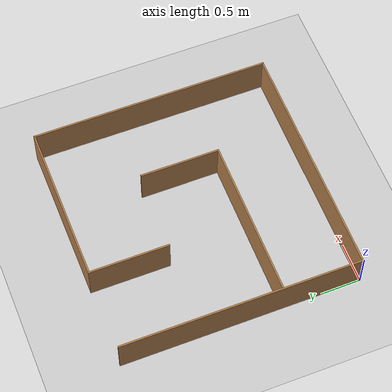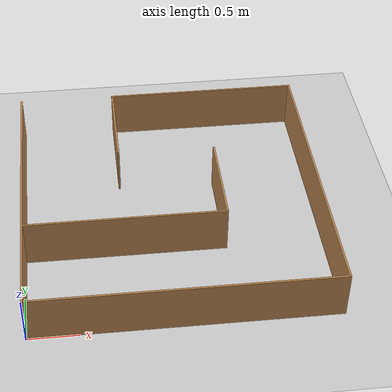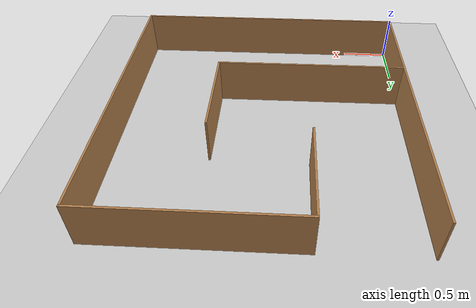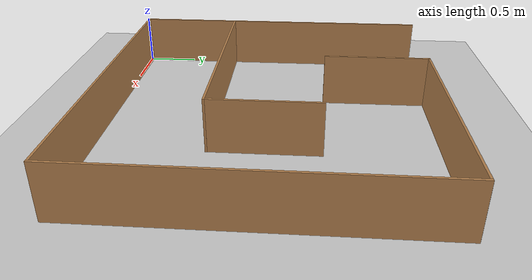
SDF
<sdf version="1.6">
 <world name="default">
  <light name="sun" type="directional">
   <pose>0 0 10 0 -0 0</pose>
   <diffuse>0.8 0.8 0.8 1</diffuse>
   <specular>0.2 0.2 0.2 1</specular>
   <attenuation>
    <range>1000</range>
    <constant>0.9</constant>
    <linear>0.01</linear>
    <quadratic>0.001</quadratic>
   </attenuation>
   <direction>-0.5 0.1 -0.9</direction>
  </light>
  <model name="ground_plane">
   <static>1</static>
   <link name="link">
    <collision name="collision">
     <geometry><plane><normal>0 0 1</normal><size>100 100</size></plane></geometry>
     <surface>
      <contact><collide_bitmask>65535</collide_bitmask></contact>
      <friction><ode><mu>100</mu><mu2>50</mu2></ode></friction>
     </surface>
    </collision>
    <visual name="visual">
     <cast_shadows>0</cast_shadows>
     <geometry><plane><normal>0 0 1</normal><size>100 100</size></plane></geometry>
     <material>
      <script><uri>file://media/materials/scripts/gazebo.material</uri><name>Gazebo/Grey</name></script>
     </material>
    </visual>
   </link>
  </model>
  <gravity>0 0 -9.8</gravity>
  <magnetic_field>6e-06 2.3e-05 -4.2e-05</magnetic_field>
  <atmosphere type="adiabatic"/>
  <physics name="default_physics" default="0" type="ode">
   <max_step_size>0.001</max_step_size>
   <real_time_factor>1</real_time_factor>
   <real_time_update_rate>1000</real_time_update_rate>
  </physics>
  <scene><ambient>0.4 0.4 0.4 1</ambient><background>0.7 0.7 0.7 1</background><shadows>1</shadows></scene>
  <audio><device>default</device></audio>
  <spherical_coordinates>
   <surface_model>EARTH_WGS84</surface_model>
   <latitude_deg>0</latitude_deg>
   <longitude_deg>0</longitude_deg>
   <elevation>0</elevation>
   <heading_deg>0</heading_deg>
  </spherical_coordinates>
  <model name="circuit_25.1">
   <pose>1.49593 1.50415 0 0 -0 0</pose>
   <link name="Wall_12">
    <collision name="Wall_12_Collision">
     <geometry><box><size>3 0.02 0.5</size></box></geometry>
     <pose>0 0 0.25 0 -0 0</pose>
    </collision>
    <visual name="Wall_12_Visual">
     <pose>0 0 0.25 0 -0 0</pose>
     <geometry><box><size>3 0.02 0.5</size></box></geometry>
     <material>
      <script><uri>file://media/materials/scripts/gazebo.material</uri><name>Gazebo/Wood</name></script>
      <ambient>1 1 1 1</ambient>
     </material>
     <meta><layer>0</layer></meta>
    </visual>
    <pose>0 -1.49069 0 0 -0 0</pose>
   </link>
   <link name="Wall_14">
    <collision name="Wall_14_Collision">
     <geometry><box><size>3 0.02 0.5</size></box></geometry>
     <pose>0 0 0.25 0 -0 0</pose>
    </collision>
    <visual name="Wall_14_Visual">
     <pose>0 0 0.25 0 -0 0</pose>
     <geometry><box><size>3 0.02 0.5</size></box></geometry>
     <material>
      <script><uri>file://media/materials/scripts/gazebo.material</uri><name>Gazebo/Wood</name></script>
      <ambient>1 1 1 1</ambient>
     </material>
     <meta><layer>0</layer></meta>
    </visual>
    <pose>-1.4903 -0.000677 0 0 -0 1.5708</pose>
   </link>
   <link name="Wall_16">
    <collision name="Wall_16_Collision">
     <geometry><box><size>3 0.02 0.5</size></box></geometry>
     <pose>0 0 0.25 0 -0 0</pose>
    </collision>
    <visual name="Wall_16_Visual">
     <pose>0 0 0.25 0 -0 0</pose>
     <geometry><box><size>3 0.02 0.5</size></box></geometry>
     <material>
      <script><uri>file://media/materials/scripts/gazebo.material</uri><name>Gazebo/Wood</name></script>
      <ambient>1 1 1 1</ambient>
     </material>
     <meta><layer>0</layer></meta>
    </visual>
    <pose>1.4903 -0.000565 0 0 -0 1.5708</pose>
   </link>
   <link name="Wall_18">
    <collision name="Wall_18_Collision">
     <geometry><box><size>2 0.02 0.5</size></box></geometry>
     <pose>0 0 0.25 0 -0 0</pose>
    </collision>
    <visual name="Wall_18_Visual">
     <pose>0 0 0.25 0 -0 0</pose>
     <geometry><box><size>2 0.02 0.5</size></box></geometry>
     <material>
      <script><uri>file://media/materials/scripts/gazebo.material</uri><name>Gazebo/Wood</name></script>
      <ambient>1 1 1 1</ambient>
     </material>
     <meta><layer>0</layer></meta>
    </visual>
    <pose>0.500076 1.49069 0 0 -0 3.14159</pose>
   </link>
   <link name="Wall_20">
    <collision name="Wall_20_Collision">
     <geometry><box><size>2 0.02 0.5</size></box></geometry>
     <pose>0 0 0.25 0 -0 0</pose>
    </collision>
    <visual name="Wall_20_Visual">
     <pose>0 0 0.25 0 -0 0</pose>
     <geometry><box><size>2 0.02 0.5</size></box></geometry>
     <material>
      <script><uri>file://media/materials/scripts/gazebo.material</uri><name>Gazebo/Wood</name></script>
      <ambient>1 1 1 1</ambient>
     </material>
     <meta><layer>0</layer></meta>
    </visual>
    <pose>-0.483514 -0.500636 0 0 -0 0</pose>
   </link>
   <link name="Wall_22">
    <collision name="Wall_22_Collision">
     <geometry><box><size>1 0.02 0.5</size></box></geometry>
     <pose>0 0 0.25 0 -0 0</pose>
    </collision>
    <visual name="Wall_22_Visual">
     <pose>0 0 0.25 0 -0 0</pose>
     <geometry><box><size>1 0.02 0.5</size></box></geometry>
     <material>
      <script><uri>file://media/materials/scripts/gazebo.material</uri><name>Gazebo/Wood</name></script>
      <ambient>1 1 1 1</ambient>
     </material>
     <meta><layer>0</layer></meta>
    </visual>
    <pose>0.506232 -0.009744 0 0 -0 -1.5708</pose>
   </link>
   <link name="Wall_24">
    <collision name="Wall_24_Collision">
     <geometry><box><size>1 0.02 0.5</size></box></geometry>
     <pose>0 0 0.25 0 -0 0</pose>
    </collision>
    <visual name="Wall_24_Visual">
     <pose>0 0 0.25 0 -0 0</pose>
     <geometry><box><size>1 0.02 0.5</size></box></geometry>
     <material>
      <script><uri>file://media/materials/scripts/gazebo.material</uri><name>Gazebo/Wood</name></script>
      <ambient>1 1 1 1</ambient>
     </material>
     <meta><layer>0</layer></meta>
    </visual>
    <pose>-0.490608 1.00024 0 0 -0 -1.5708</pose>
   </link>
   <static>1</static>
  </model>
 </world>
</sdf>
